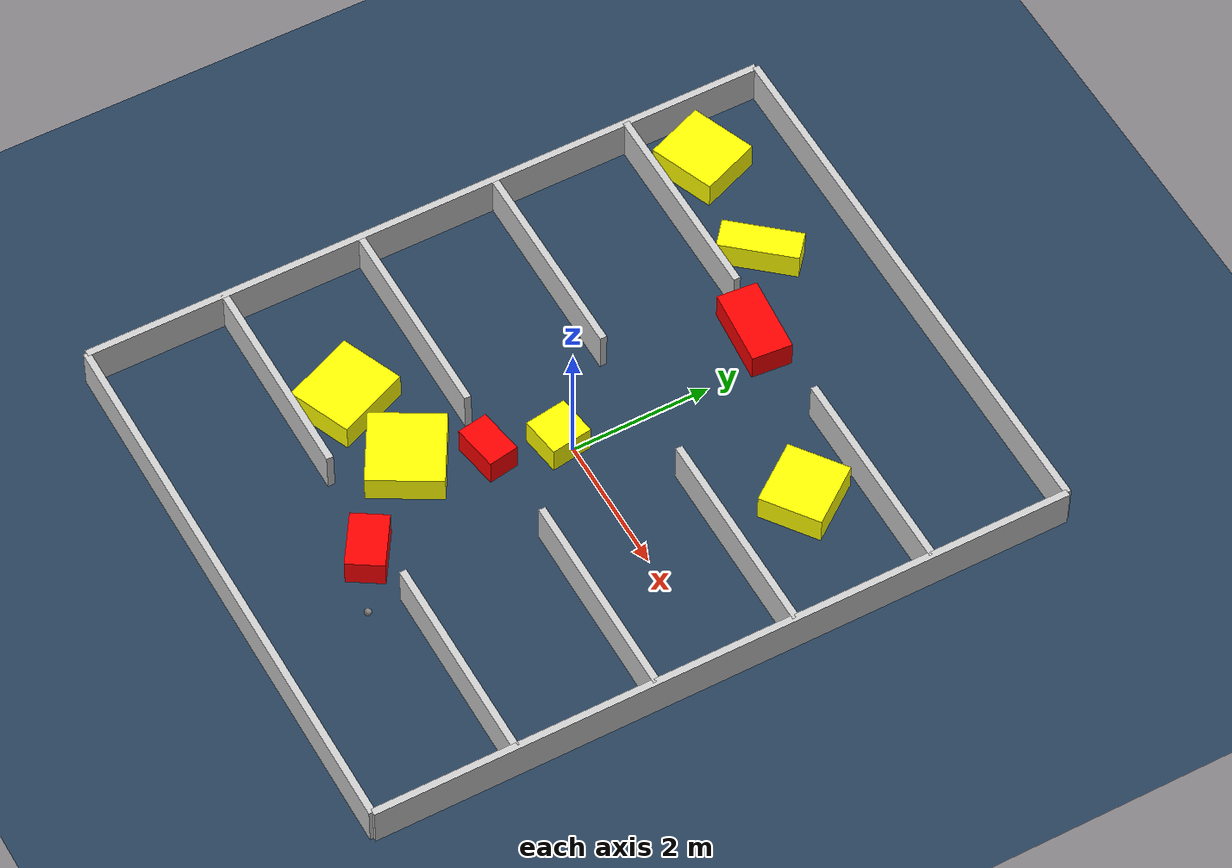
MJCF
<?xml version="1.0" ?>
<mujoco model="generated_environment">
  <option timestep="0.01" integrator="RK4" cone="elliptic"/>
  <default>
    <geom density="1"/>
  </default>
  <asset>
    <texture builtin="gradient" height="3072" rgb1="0.3 0.5 0.7" rgb2="0 0 0" type="skybox" width="512"/>
    <texture builtin="checker" height="300" mark="edge" markrgb="0.8 0.8 0.8" name="groundplane" rgb1="0.2 0.3 0.4" rgb2="0.1 0.2 0.3" type="2d" width="300"/>
    <material name="groundplane" reflectance="0.2" texrepeat="5 5" texture="groundplane" texuniform="true"/>
    <material name="robot" rgba="0.0 1.0 0.0 1"/>
  </asset>
  <worldbody>
    <light dir="0 0 -1" directional="true" pos="0 0 1.5"/>
    <geom condim="4" friction="1.0 0.005 0.001" material="groundplane" name="floor" size="0 0 0.05" type="plane"/>
    <body name="walls">
      <geom name="wall_1" condim="4" pos="-4.0 0.0 0.3" rgba="0.800000011920929 0.800000011920929 0.800000011920929 1.0" size="0.05 5.0 0.3" type="box"/>
      <geom name="wall_2" condim="4" pos="4.0 0.0 0.3" rgba="0.800000011920929 0.800000011920929 0.800000011920929 1.0" size="0.05 5.0 0.3" type="box"/>
      <geom name="wall_3" condim="4" pos="0.0 -5.0 0.3" rgba="0.800000011920929 0.800000011920929 0.800000011920929 1.0" size="4.0 0.05 0.3" type="box"/>
      <geom name="wall_4" condim="4" pos="0.0 5.0 0.3" rgba="0.800000011920929 0.800000011920929 0.800000011920929 1.0" size="4.0 0.05 0.3" type="box"/>
      <geom name="wall_5" condim="4" pos="-2.5 -3.0 0.3" rgba="0.800000011920929 0.800000011920929 0.800000011920929 1.0" size="1.5 0.05 0.3" type="box"/>
      <geom name="wall_6" condim="4" pos="2.5 -3.0 0.3" rgba="0.800000011920929 0.800000011920929 0.800000011920929 1.0" size="1.5 0.05 0.3" type="box"/>
      <geom name="wall_7" condim="4" pos="-2.5 -1.0 0.3" rgba="0.800000011920929 0.800000011920929 0.800000011920929 1.0" size="1.5 0.05 0.3" type="box"/>
      <geom name="wall_8" condim="4" pos="2.5 -1.0 0.3" rgba="0.800000011920929 0.800000011920929 0.800000011920929 1.0" size="1.5 0.05 0.3" type="box"/>
      <geom name="wall_9" condim="4" pos="-2.5 1.0 0.3" rgba="0.800000011920929 0.800000011920929 0.800000011920929 1.0" size="1.5 0.05 0.3" type="box"/>
      <geom name="wall_10" condim="4" pos="2.5 1.0 0.3" rgba="0.800000011920929 0.800000011920929 0.800000011920929 1.0" size="1.5 0.05 0.3" type="box"/>
      <geom name="wall_11" condim="4" pos="-2.5 3.0 0.3" rgba="0.800000011920929 0.800000011920929 0.800000011920929 1.0" size="1.5 0.05 0.3" type="box"/>
      <geom name="wall_12" condim="4" pos="2.5 3.0 0.3" rgba="0.800000011920929 0.800000011920929 0.800000011920929 1.0" size="1.5 0.05 0.3" type="box"/>
    </body>
    <body name="robot">
      <joint name="joint_x" type="slide" pos="0 0 0" axis="1 0 0"/>
      <joint name="joint_y" type="slide" pos="0 0 0" axis="0 1 0"/>
      <geom name="robot" type="sphere" pos="1.097401955431228 -3.558218739881749 0.2" size="0.05" mass="5." friction="1.0 0.005 0.0001" condim="4"/>
      <site name="sensor_ball"/>
    </body>
    <body name="obstacle_1_static">
      <geom name="obstacle_1_static" condim="4" pos="-0.42442178014016907 2.939102481836212 0.2" euler="0 0 85.05232549298788" friction="1.0 0.005 0.001" rgba="1 0 0 1" size="0.2886234353929139 0.5569770160466303 0.2" type="box"/>
    </body>
    <body name="obstacle_2_movable">
      <geom name="obstacle_2_movable" condim="4" pos="-0.817642265664503 -1.9986576854127258 0.2" euler="0 0 150.1923889736287" friction="1.0 0.005 0.001" rgba="1 1 0 1" size="0.5397036709160907 0.5221265437813754 0.2" type="box" mass="0.1"/>
      <joint type="free"/>
    </body>
    <body name="obstacle_3_movable">
      <geom name="obstacle_3_movable" condim="4" pos="-3.2604512621533797 3.762172206282089 0.2" euler="0 0 291.3826352057554" friction="1.0 0.005 0.001" rgba="1 1 0 1" size="0.45063710250676714 0.4901300874083361 0.2" type="box" mass="0.1"/>
      <joint type="free"/>
    </body>
    <body name="obstacle_4_movable">
      <geom name="obstacle_4_movable" condim="4" pos="-1.5569854533892329 3.680838707040209 0.2" euler="0 0 319.5120999897564" friction="1.0 0.005 0.001" rgba="1 1 0 1" size="0.2148449968266297 0.5616098657148498 0.2" type="box" mass="0.1"/>
      <joint type="free"/>
    </body>
    <body name="obstacle_5_static">
      <geom name="obstacle_5_static" condim="4" pos="0.22806362312790673 -3.1071586660333823 0.2" euler="0 0 237.52199060719627" friction="1.0 0.005 0.001" rgba="1 0 0 1" size="0.26373196153012035 0.39770034766809753 0.2" type="box"/>
    </body>
    <body name="obstacle_6_movable">
      <geom name="obstacle_6_movable" condim="4" pos="-0.16025597704026762 -0.12253793543306202 0.2" euler="0 0 188.3462814852375" friction="1.0 0.005 0.001" rgba="1 1 0 1" size="0.29179165294553994 0.3012784802796175 0.2" type="box" mass="0.1"/>
      <joint type="free"/>
    </body>
    <body name="obstacle_7_static">
      <geom name="obstacle_7_static" condim="4" pos="-0.41570729935403516 -1.0210138774081066 0.2" euler="0 0 279.63887462013435" friction="1.0 0.005 0.001" rgba="1 0 0 1" size="0.22021352552467055 0.33500734476748545 0.2" type="box"/>
    </body>
    <body name="obstacle_8_movable">
      <geom name="obstacle_8_movable" condim="4" pos="-2.068581873068071 -2.225720547555843 0.2" euler="0 0 202.85384301791782" friction="1.0 0.005 0.001" rgba="1 1 0 1" size="0.4725404468609082 0.5445530905229758 0.2" type="box" mass="0.1"/>
      <joint type="free"/>
    </body>
    <body name="obstacle_9_movable">
      <geom name="obstacle_9_movable" condim="4" pos="2.141810422699545 2.208114314565802 0.2" euler="0 0 306.3230687130738" friction="1.0 0.005 0.001" rgba="1 1 0 1" size="0.4755413530988751 0.4451100695882393 0.2" type="box" mass="0.1"/>
      <joint type="free"/>
    </body>
  </worldbody>
  <actuator>
    <motor name="actuator_x" joint="joint_x" gear="1" ctrlrange="-1 1"/>
    <motor name="actuator_y" joint="joint_y" gear="1" ctrlrange="-1 1"/>
  </actuator>
</mujoco>
